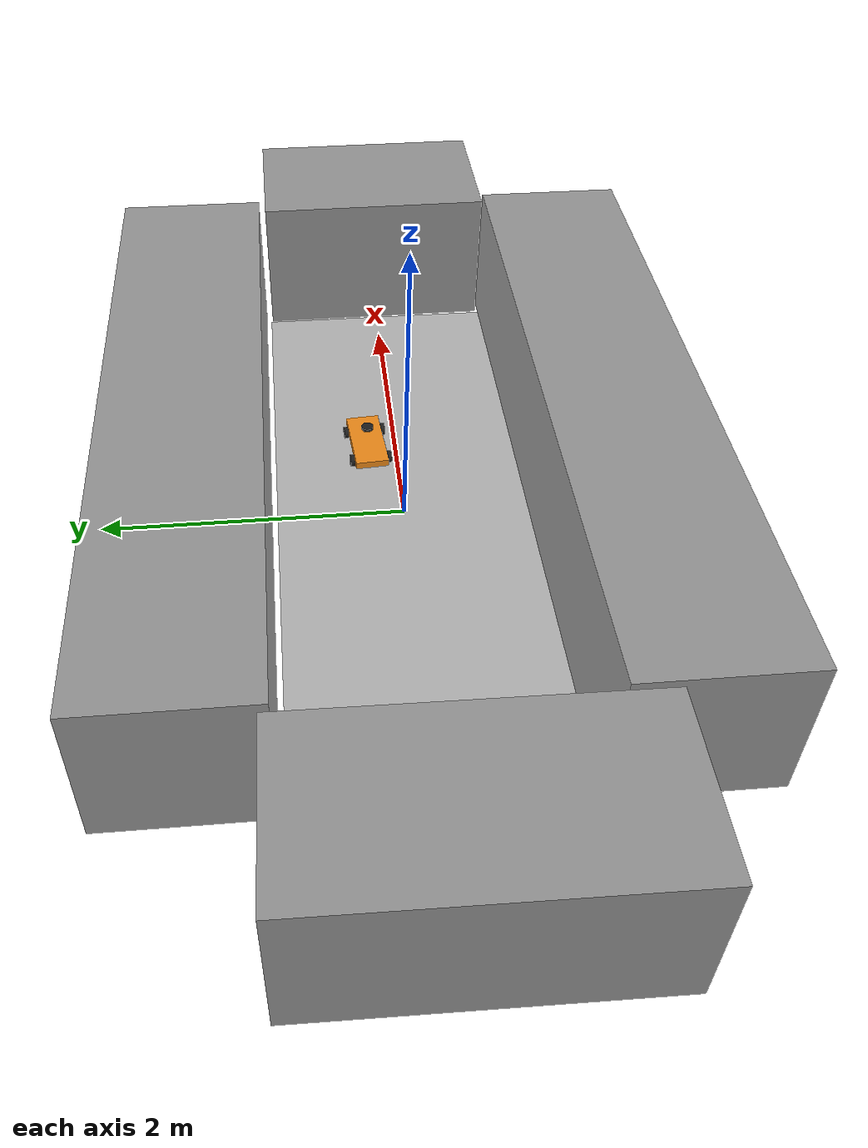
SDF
<sdf version="1.6">
 <world name="default">
  <model name="my_ground_plane">
   <static>1</static>
   <link name="link">
    <collision name="collision">
     <geometry><plane><normal>0 0 1</normal><size>4.5 1.6875</size></plane></geometry>
     <surface><friction><ode><mu>100</mu><mu2>50</mu2></ode></friction></surface>
    </collision>
    <visual name="visual">
     <cast_shadows>0</cast_shadows>
     <geometry><plane><normal>0 0 1</normal><size>4.5 1.6875</size></plane></geometry>
     <material>
      <script>
       <uri>model://my_ground_plane/materials/scripts</uri>
       <uri>model://my_ground_plane/materials/textures</uri>
       <name>MyGroundPlane/Image</name>
      </script>
     </material>
    </visual>
   </link>
  </model>
  <light name="sun" type="directional">
   <pose>0 0 10 0 -0 0</pose>
   <diffuse>0.8 0.8 0.8 1</diffuse>
   <specular>0.2 0.2 0.2 1</specular>
   <attenuation>
    <range>1000</range>
    <constant>0.9</constant>
    <linear>0.01</linear>
    <quadratic>0.001</quadratic>
   </attenuation>
   <direction>-0.5 0.1 -0.9</direction>
  </light>
  <gravity>0 0 -9.8</gravity>
  <magnetic_field>6e-06 2.3e-05 -4.2e-05</magnetic_field>
  <atmosphere type="adiabatic"/>
  <physics name="default_physics" default="0" type="ode">
   <max_step_size>0.001</max_step_size>
   <real_time_factor>1</real_time_factor>
   <real_time_update_rate>1000</real_time_update_rate>
  </physics>
  <scene><ambient>0.4 0.4 0.4 1</ambient><background>0.7 0.7 0.7 1</background><shadows>1</shadows></scene>
  <audio><device>default</device></audio>
  <spherical_coordinates>
   <surface_model>EARTH_WGS84</surface_model>
   <latitude_deg>0</latitude_deg>
   <longitude_deg>0</longitude_deg>
   <elevation>0</elevation>
   <heading_deg>0</heading_deg>
  </spherical_coordinates>
  <model name="car">
   <link name="base_footprint">
    <inertial>
     <pose>0.149737 0 0.043684 0 -0 0</pose>
     <mass>3.8</mass>
     <inertia>
      <ixx>0.0186107</ixx>
      <ixy>0</ixy>
      <ixz>0.000136316</ixz>
      <iyy>0.07526</iyy>
      <iyz>0</iyz>
      <izz>0.0885056</izz>
     </inertia>
    </inertial>
    <collision name="base_footprint_fixed_joint_lump__base_center_collision">
     <pose>0.15 0 0.04 0 -0 0</pose>
     <geometry><box><size>0.485 0.227 0.05</size></box></geometry>
    </collision>
    <collision name="base_footprint_fixed_joint_lump__laser_frame_collision_1">
     <pose>0.14 0 0.18 0 -0 0</pose>
     <geometry><cylinder><length>0.02</length><radius>0.04</radius></cylinder></geometry>
    </collision>
    <visual name="base_footprint_fixed_joint_lump__base_center_visual">
     <pose>0.15 0 0.04 0 -0 0</pose>
     <geometry><box><size>0.485 0.227 0.05</size></box></geometry>
     <material>
      <script><name>Gazebo/Orange</name><uri>file://media/materials/scripts/gazebo.material</uri></script>
     </material>
    </visual>
    <visual name="base_footprint_fixed_joint_lump__laser_frame_visual_1">
     <pose>0.14 0 0.18 0 -0 0</pose>
     <geometry><cylinder><length>0.02</length><radius>0.04</radius></cylinder></geometry>
     <material>
      <script><name>Gazebo/Black</name><uri>file://media/materials/scripts/gazebo.material</uri></script>
     </material>
    </visual>
    <sensor name="head_hokuyo_sensor" type="ray">
     <visualize>1</visualize>
     <update_rate>7.5</update_rate>
     <ray>
      <scan>
       <horizontal>
        <samples>360</samples>
        <resolution>1</resolution>
        <min_angle>-3.14159</min_angle>
        <max_angle>3.14159</max_angle>
       </horizontal>
       <vertical><samples>1</samples><min_angle>0</min_angle><max_angle>0</max_angle></vertical>
      </scan>
      <range><min>0.15</min><max>10</max><resolution>0.01</resolution></range>
      <noise><type>gaussian</type><mean>0</mean><stddev>0.01</stddev></noise>
     </ray>
     <plugin name="gazebo_ros_head_hokuyo_controller" filename="libgazebo_ros_laser.so">
      <topicName>/scan</topicName>
      <frameName>laser_frame</frameName>
      <robotNamespace>/</robotNamespace>
     </plugin>
     <pose>0.14 0 0.18 0 -0 0</pose>
    </sensor>
   </link>
   <link name="steer_fl">
    <pose>0.3 -0.1285 0.015 0 -0 0</pose>
    <inertial>
     <mass>0.001</mass>
     <inertia><ixx>0.001</ixx><ixy>0</ixy><ixz>0</ixz><iyy>0.001</iyy><iyz>0</iyz><izz>0.001</izz></inertia>
    </inertial>
   </link>
   <joint name="fl_steer_joint" type="revolute">
    <child>steer_fl</child>
    <parent>base_footprint</parent>
    <axis>
     <xyz>0 0 1</xyz>
     <limit><lower>-0.785398</lower><upper>0.785398</upper><effort>0</effort><velocity>0</velocity></limit>
     <dynamics><spring_reference>0</spring_reference><spring_stiffness>0</spring_stiffness></dynamics>
     <use_parent_model_frame>1</use_parent_model_frame>
    </axis>
   </joint>
   <link name="wheel_fl">
    <pose>0.3 -0.1285 0.015 1.5708 -0 0</pose>
    <inertial>
     <mass>0.056</mass>
     <inertia>
      <ixx>2.66e-05</ixx>
      <ixy>0</ixy>
      <ixz>0</ixz>
      <iyy>2.66e-05</iyy>
      <iyz>0</iyz>
      <izz>4.48e-05</izz>
     </inertia>
    </inertial>
    <collision name="wheel_fl_collision">
     <geometry><cylinder><length>0.03</length><radius>0.04</radius></cylinder></geometry>
     <surface>
      <contact><ode><kp>1e+07</kp><kd>1</kd></ode></contact>
      <friction><ode><mu>1.75</mu><mu2>1.75</mu2></ode></friction>
     </surface>
    </collision>
    <visual name="wheel_fl_visual">
     <geometry><cylinder><length>0.03</length><radius>0.04</radius></cylinder></geometry>
     <material>
      <script><name>Gazebo/Black</name><uri>file://media/materials/scripts/gazebo.material</uri></script>
     </material>
    </visual>
   </link>
   <joint name="fl_speed_joint" type="revolute">
    <child>wheel_fl</child>
    <parent>steer_fl</parent>
    <axis>
     <xyz>0 1 -0</xyz>
     <limit><lower>-1e+16</lower><upper>1e+16</upper></limit>
     <dynamics><spring_reference>0</spring_reference><spring_stiffness>0</spring_stiffness></dynamics>
     <use_parent_model_frame>1</use_parent_model_frame>
    </axis>
   </joint>
   <link name="steer_fr">
    <pose>0.3 0.1285 0.015 0 -0 0</pose>
    <inertial>
     <mass>0.001</mass>
     <inertia><ixx>0.001</ixx><ixy>0</ixy><ixz>0</ixz><iyy>0.001</iyy><iyz>0</iyz><izz>0.001</izz></inertia>
    </inertial>
   </link>
   <joint name="fr_steer_joint" type="revolute">
    <child>steer_fr</child>
    <parent>base_footprint</parent>
    <axis>
     <xyz>0 0 1</xyz>
     <limit><lower>-0.785398</lower><upper>0.785398</upper><effort>0</effort><velocity>0</velocity></limit>
     <dynamics><spring_reference>0</spring_reference><spring_stiffness>0</spring_stiffness></dynamics>
     <use_parent_model_frame>1</use_parent_model_frame>
    </axis>
   </joint>
   <link name="wheel_fr">
    <pose>0.3 0.1285 0.015 1.5708 -0 0</pose>
    <inertial>
     <mass>0.056</mass>
     <inertia>
      <ixx>2.66e-05</ixx>
      <ixy>0</ixy>
      <ixz>0</ixz>
      <iyy>2.66e-05</iyy>
      <iyz>0</iyz>
      <izz>4.48e-05</izz>
     </inertia>
    </inertial>
    <collision name="wheel_fr_collision">
     <geometry><cylinder><length>0.03</length><radius>0.04</radius></cylinder></geometry>
     <surface>
      <contact><ode><kp>1e+07</kp><kd>1</kd></ode></contact>
      <friction><ode><mu>1.75</mu><mu2>1.75</mu2></ode></friction>
     </surface>
    </collision>
    <visual name="wheel_fr_visual">
     <geometry><cylinder><length>0.03</length><radius>0.04</radius></cylinder></geometry>
     <material>
      <script><name>Gazebo/Black</name><uri>file://media/materials/scripts/gazebo.material</uri></script>
     </material>
    </visual>
   </link>
   <joint name="fr_speed_joint" type="revolute">
    <child>wheel_fr</child>
    <parent>steer_fr</parent>
    <axis>
     <xyz>0 1 -0</xyz>
     <limit><lower>-1e+16</lower><upper>1e+16</upper></limit>
     <dynamics><spring_reference>0</spring_reference><spring_stiffness>0</spring_stiffness></dynamics>
     <use_parent_model_frame>1</use_parent_model_frame>
    </axis>
   </joint>
   <link name="wheel_rl">
    <pose>0 -0.1285 0.015 1.5708 -0 0</pose>
    <inertial>
     <mass>0.056</mass>
     <inertia>
      <ixx>2.66e-05</ixx>
      <ixy>0</ixy>
      <ixz>0</ixz>
      <iyy>2.66e-05</iyy>
      <iyz>0</iyz>
      <izz>4.48e-05</izz>
     </inertia>
    </inertial>
    <collision name="wheel_rl_collision">
     <geometry><cylinder><length>0.03</length><radius>0.04</radius></cylinder></geometry>
     <surface>
      <contact><ode><kp>1e+07</kp><kd>1</kd></ode></contact>
      <friction><ode><mu>1.75</mu><mu2>1.75</mu2></ode></friction>
     </surface>
    </collision>
    <visual name="wheel_rl_visual">
     <geometry><cylinder><length>0.03</length><radius>0.04</radius></cylinder></geometry>
     <material>
      <script><name>Gazebo/Black</name><uri>file://media/materials/scripts/gazebo.material</uri></script>
     </material>
    </visual>
   </link>
   <joint name="rl_speed_joint" type="revolute">
    <child>wheel_rl</child>
    <parent>base_footprint</parent>
    <axis>
     <xyz>0 1 -0</xyz>
     <limit><lower>-1e+16</lower><upper>1e+16</upper></limit>
     <dynamics><spring_reference>0</spring_reference><spring_stiffness>0</spring_stiffness></dynamics>
     <use_parent_model_frame>1</use_parent_model_frame>
    </axis>
   </joint>
   <link name="wheel_rr">
    <pose>0 0.1285 0.015 1.5708 -0 0</pose>
    <inertial>
     <mass>0.056</mass>
     <inertia>
      <ixx>2.66e-05</ixx>
      <ixy>0</ixy>
      <ixz>0</ixz>
      <iyy>2.66e-05</iyy>
      <iyz>0</iyz>
      <izz>4.48e-05</izz>
     </inertia>
    </inertial>
    <collision name="wheel_rr_collision">
     <geometry><cylinder><length>0.03</length><radius>0.04</radius></cylinder></geometry>
     <surface>
      <contact><ode><kp>1e+07</kp><kd>1</kd></ode></contact>
      <friction><ode><mu>1.75</mu><mu2>1.75</mu2></ode></friction>
     </surface>
    </collision>
    <visual name="wheel_rr_visual">
     <geometry><cylinder><length>0.03</length><radius>0.04</radius></cylinder></geometry>
     <material>
      <script><name>Gazebo/Black</name><uri>file://media/materials/scripts/gazebo.material</uri></script>
     </material>
    </visual>
   </link>
   <joint name="rr_speed_joint" type="revolute">
    <child>wheel_rr</child>
    <parent>base_footprint</parent>
    <axis>
     <xyz>0 1 -0</xyz>
     <limit><lower>-1e+16</lower><upper>1e+16</upper></limit>
     <dynamics><spring_reference>0</spring_reference><spring_stiffness>0</spring_stiffness></dynamics>
     <use_parent_model_frame>1</use_parent_model_frame>
    </axis>
   </joint>
   <static>0</static>
   <plugin name="wr8_interface_plugin" filename="libwr8_interface_plugin.so">
    <pubTf>1</pubTf>
    <tfFreq>100.0</tfFreq>
    <maxSteerRad>0.523598775598</maxSteerRad>
    <wheelbase>0.3</wheelbase>
    <wheelRadius>0.04</wheelRadius>
    <trackWidth>0.257</trackWidth>
    <robotNamespace>/</robotNamespace>
   </plugin>
   <plugin name="joint_state_publisher" filename="libgazebo_ros_joint_state_publisher.so">
    <jointName>fl_steer_joint, fr_steer_joint, fl_speed_joint, fr_speed_joint, rl_speed_joint, rr_speed_joint</jointName>
    <updateRate>100</updateRate>
    <alwaysOn>1</alwaysOn>
   </plugin>
   <pose>0.505144 0.185782 0.024999 -1e-06 0.000837 0.0773</pose>
  </model>
  <model name="unit_box">
   <pose>-2.77056 -0.067995 0.499985 -1.5e-05 -0 -0.012076</pose>
   <link name="link">
    <inertial>
     <mass>1</mass>
     <inertia>
      <ixx>0.166667</ixx>
      <ixy>0</ixy>
      <ixz>0</ixz>
      <iyy>0.166667</iyy>
      <iyz>0</iyz>
      <izz>0.166667</izz>
     </inertia>
    </inertial>
    <collision name="collision"><geometry><box><size>1 2.01504 1</size></box></geometry></collision>
    <visual name="visual">
     <geometry><box><size>1 2.01504 1</size></box></geometry>
     <material>
      <script><name>Gazebo/Grey</name><uri>file://media/materials/scripts/gazebo.material</uri></script>
     </material>
    </visual>
   </link>
  </model>
  <model name="unit_box_0">
   <pose>0.09546 1.38021 0.498528 0 -0.000638 7e-06</pose>
   <link name="link">
    <inertial>
     <mass>1</mass>
     <inertia>
      <ixx>0.166667</ixx>
      <ixy>0</ixy>
      <ixz>0</ixz>
      <iyy>0.166667</iyy>
      <iyz>0</iyz>
      <izz>0.166667</izz>
     </inertia>
    </inertial>
    <collision name="collision"><geometry><box><size>4.61832 1 1</size></box></geometry></collision>
    <visual name="visual">
     <geometry><box><size>4.61832 1 1</size></box></geometry>
     <material>
      <script><name>Gazebo/Grey</name><uri>file://media/materials/scripts/gazebo.material</uri></script>
     </material>
    </visual>
   </link>
  </model>
  <model name="unit_box_clone">
   <pose>2.76567 0.017247 0.5 0 -0 0.007396</pose>
   <link name="link">
    <inertial>
     <mass>1</mass>
     <inertia>
      <ixx>0.166667</ixx>
      <ixy>0</ixy>
      <ixz>0</ixz>
      <iyy>0.166667</iyy>
      <iyz>0</iyz>
      <izz>0.166667</izz>
     </inertia>
    </inertial>
    <collision name="collision"><geometry><box><size>1 1.63783 1</size></box></geometry></collision>
    <visual name="visual">
     <geometry><box><size>1 1.63783 1</size></box></geometry>
     <material>
      <script><name>Gazebo/Grey</name><uri>file://media/materials/scripts/gazebo.material</uri></script>
     </material>
    </visual>
   </link>
  </model>
  <model name="unit_box_0_clone">
   <pose>0.064366 -1.32696 0.498528 0 -0.000638 7e-06</pose>
   <link name="link">
    <inertial>
     <mass>1</mass>
     <inertia>
      <ixx>0.166667</ixx>
      <ixy>0</ixy>
      <ixz>0</ixz>
      <iyy>0.166667</iyy>
      <iyz>0</iyz>
      <izz>0.166667</izz>
     </inertia>
    </inertial>
    <collision name="collision"><geometry><box><size>4.61832 1 1</size></box></geometry></collision>
    <visual name="visual">
     <geometry><box><size>4.61832 1 1</size></box></geometry>
     <material>
      <script><name>Gazebo/Grey</name><uri>file://media/materials/scripts/gazebo.material</uri></script>
     </material>
    </visual>
   </link>
  </model>
 </world>
</sdf>
